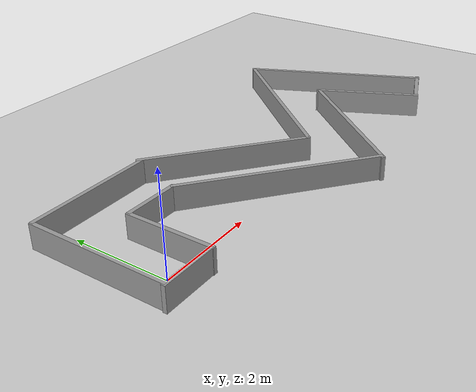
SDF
<sdf version="1.7">
 <world name="default">
  <plugin name="gazebo_ros_state" filename="libgazebo_ros_state.so"/>
  <light name="sun" type="directional">
   <pose>0 0 10 0 -0 0</pose>
   <diffuse>0.8 0.8 0.8 1</diffuse>
   <specular>0.2 0.2 0.2 1</specular>
   <attenuation>
    <range>1000</range>
    <constant>0.9</constant>
    <linear>0.01</linear>
    <quadratic>0.001</quadratic>
   </attenuation>
   <direction>-0.5 0.1 -0.9</direction>
   <spot><inner_angle>0</inner_angle><outer_angle>0</outer_angle><falloff>0</falloff></spot>
  </light>
  <model name="ground_plane">
   <static>1</static>
   <link name="link">
    <collision name="collision">
     <geometry><plane><normal>0 0 1</normal><size>100 100</size></plane></geometry>
     <surface>
      <contact><collide_bitmask>65535</collide_bitmask></contact>
      <friction><ode><mu>100</mu><mu2>50</mu2></ode></friction>
     </surface>
    </collision>
    <visual name="visual">
     <cast_shadows>0</cast_shadows>
     <geometry><plane><normal>0 0 1</normal><size>100 100</size></plane></geometry>
     <material>
      <script><uri>file://media/materials/scripts/gazebo.material</uri><name>Gazebo/Grey</name></script>
     </material>
    </visual>
   </link>
  </model>
  <gravity>0 0 -9.8</gravity>
  <magnetic_field>6e-06 2.3e-05 -4.2e-05</magnetic_field>
  <atmosphere type="adiabatic"/>
  <physics type="ode">
   <max_step_size>0.001</max_step_size>
   <real_time_factor>1</real_time_factor>
   <real_time_update_rate>1000</real_time_update_rate>
  </physics>
  <scene><ambient>0.4 0.4 0.4 1</ambient><background>0.7 0.7 0.7 1</background><shadows>1</shadows></scene>
  <audio><device>default</device></audio>
  <spherical_coordinates>
   <surface_model>EARTH_WGS84</surface_model>
   <latitude_deg>0</latitude_deg>
   <longitude_deg>0</longitude_deg>
   <elevation>0</elevation>
   <heading_deg>0</heading_deg>
  </spherical_coordinates>
  <model name="unit_box_ofir">
   <link name="link_0">
    <inertial>
     <mass>0.244143</mass>
     <inertia>
      <ixx>0.192689</ixx>
      <ixy>0</ixy>
      <ixz>0</ixz>
      <iyy>0.0204891</iyy>
      <iyz>0</iyz>
      <izz>0.172487</izz>
     </inertia>
    </inertial>
    <pose>0.498204 3.08925 0 0 -0 0</pose>
    <visual name="visual">
     <geometry><box><size>0.084097 2.91049 1</size></box></geometry>
     <material>
      <lighting>1</lighting>
      <script><uri>file://media/materials/scripts/gazebo.material</uri><name>Gazebo/Grey</name></script>
      <shader type="pixel"><normal_map>__default__</normal_map></shader>
     </material>
    </visual>
    <collision name="collision">
     <geometry><box><size>0.084097 2.91049 1</size></box></geometry>
     <surface>
      <friction>
       <ode><mu>1</mu><mu2>1</mu2><fdir1>0 0 0</fdir1><slip1>0</slip1><slip2>0</slip2></ode>
       <torsional>
        <coefficient>1</coefficient>
        <patch_radius>0</patch_radius>
        <surface_radius>0</surface_radius>
        <use_patch_radius>1</use_patch_radius>
        <ode><slip>0</slip></ode>
       </torsional>
      </friction>
      <bounce><restitution_coefficient>0</restitution_coefficient><threshold>1e+06</threshold></bounce>
      <contact>
       <collide_without_contact>0</collide_without_contact>
       <collide_without_contact_bitmask>1</collide_without_contact_bitmask>
       <collide_bitmask>1</collide_bitmask>
       <ode>
        <soft_cfm>0</soft_cfm>
        <soft_erp>0.2</soft_erp>
        <kp>1e+13</kp>
        <kd>1</kd>
        <max_vel>0.01</max_vel>
        <min_depth>0</min_depth>
       </ode>
       <bullet>
        <split_impulse>1</split_impulse>
        <split_impulse_penetration_threshold>-0.01</split_impulse_penetration_threshold>
        <soft_cfm>0</soft_cfm>
        <soft_erp>0.2</soft_erp>
        <kp>1e+13</kp>
        <kd>1</kd>
       </bullet>
      </contact>
     </surface>
    </collision>
   </link>
   <link name="link_0_clone">
    <inertial>
     <mass>0.154821</mass>
     <inertia>
      <ixx>0.0567073</ixx>
      <ixy>0</ixy>
      <ixz>0</ixz>
      <iyy>0.012993</iyy>
      <iyz>0</iyz>
      <izz>0.0438969</izz>
     </inertia>
    </inertial>
    <pose>1.58165 2.51249 0 0 -0 0</pose>
    <visual name="visual">
     <geometry><box><size>0.084097 1.84264 1</size></box></geometry>
     <material>
      <lighting>1</lighting>
      <script><uri>file://media/materials/scripts/gazebo.material</uri><name>Gazebo/Grey</name></script>
      <shader type="pixel"><normal_map>__default__</normal_map></shader>
     </material>
    </visual>
    <collision name="collision">
     <geometry><box><size>0.084097 1.84264 1</size></box></geometry>
     <surface>
      <friction>
       <ode><mu>1</mu><mu2>1</mu2><fdir1>0 0 0</fdir1><slip1>0</slip1><slip2>0</slip2></ode>
       <torsional>
        <coefficient>1</coefficient>
        <patch_radius>0</patch_radius>
        <surface_radius>0</surface_radius>
        <use_patch_radius>1</use_patch_radius>
        <ode><slip>0</slip></ode>
       </torsional>
      </friction>
      <bounce><restitution_coefficient>0</restitution_coefficient><threshold>1e+06</threshold></bounce>
      <contact>
       <collide_without_contact>0</collide_without_contact>
       <collide_without_contact_bitmask>1</collide_without_contact_bitmask>
       <collide_bitmask>1</collide_bitmask>
       <ode>
        <soft_cfm>0</soft_cfm>
        <soft_erp>0.2</soft_erp>
        <kp>1e+13</kp>
        <kd>1</kd>
        <max_vel>0.01</max_vel>
        <min_depth>0</min_depth>
       </ode>
       <bullet>
        <split_impulse>1</split_impulse>
        <split_impulse_penetration_threshold>-0.01</split_impulse_penetration_threshold>
        <soft_cfm>0</soft_cfm>
        <soft_erp>0.2</soft_erp>
        <kp>1e+13</kp>
        <kd>1</kd>
       </bullet>
      </contact>
     </surface>
    </collision>
   </link>
   <link name="link_0_clone_0">
    <inertial>
     <mass>0.223284</mass>
     <inertia>
      <ixx>0.150015</ixx>
      <ixy>0</ixy>
      <ixz>0</ixz>
      <iyy>0.0187386</iyy>
      <iyz>0</iyz>
      <izz>0.13154</izz>
     </inertia>
    </inertial>
    <pose>1.81037 4.51374 0 0 0 -1.56992</pose>
    <visual name="visual">
     <geometry><box><size>0.084097 2.6575 1</size></box></geometry>
     <material>
      <lighting>1</lighting>
      <script><uri>file://media/materials/scripts/gazebo.material</uri><name>Gazebo/Grey</name></script>
      <shader type="pixel"><normal_map>__default__</normal_map></shader>
     </material>
    </visual>
    <collision name="collision">
     <geometry><box><size>0.084097 2.6575 1</size></box></geometry>
     <surface>
      <friction>
       <ode><mu>1</mu><mu2>1</mu2><fdir1>0 0 0</fdir1><slip1>0</slip1><slip2>0</slip2></ode>
       <torsional>
        <coefficient>1</coefficient>
        <patch_radius>0</patch_radius>
        <surface_radius>0</surface_radius>
        <use_patch_radius>1</use_patch_radius>
        <ode><slip>0</slip></ode>
       </torsional>
      </friction>
      <bounce><restitution_coefficient>0</restitution_coefficient><threshold>1e+06</threshold></bounce>
      <contact>
       <collide_without_contact>0</collide_without_contact>
       <collide_without_contact_bitmask>1</collide_without_contact_bitmask>
       <collide_bitmask>1</collide_bitmask>
       <ode>
        <soft_cfm>0</soft_cfm>
        <soft_erp>0.2</soft_erp>
        <kp>1e+13</kp>
        <kd>1</kd>
        <max_vel>0.01</max_vel>
        <min_depth>0</min_depth>
       </ode>
       <bullet>
        <split_impulse>1</split_impulse>
        <split_impulse_penetration_threshold>-0.01</split_impulse_penetration_threshold>
        <soft_cfm>0</soft_cfm>
        <soft_erp>0.2</soft_erp>
        <kp>1e+13</kp>
        <kd>1</kd>
       </bullet>
      </contact>
     </surface>
    </collision>
   </link>
   <link name="link_0_clone_0_clone">
    <inertial>
     <mass>0.347889</mass>
     <inertia>
      <ixx>0.526005</ixx>
      <ixy>0</ixy>
      <ixz>0</ixz>
      <iyy>0.0291958</iyy>
      <iyz>0</iyz>
      <izz>0.49722</izz>
     </inertia>
    </inertial>
    <pose>4.23789 2.06687 0 0 0 -2.27061</pose>
    <visual name="visual">
     <geometry><box><size>0.084097 4.14052 1</size></box></geometry>
     <material>
      <lighting>1</lighting>
      <script><uri>file://media/materials/scripts/gazebo.material</uri><name>Gazebo/Grey</name></script>
      <shader type="pixel"><normal_map>__default__</normal_map></shader>
     </material>
    </visual>
    <collision name="collision">
     <geometry><box><size>0.084097 4.14052 1</size></box></geometry>
     <surface>
      <friction>
       <ode><mu>1</mu><mu2>1</mu2><fdir1>0 0 0</fdir1><slip1>0</slip1><slip2>0</slip2></ode>
       <torsional>
        <coefficient>1</coefficient>
        <patch_radius>0</patch_radius>
        <surface_radius>0</surface_radius>
        <use_patch_radius>1</use_patch_radius>
        <ode><slip>0</slip></ode>
       </torsional>
      </friction>
      <bounce><restitution_coefficient>0</restitution_coefficient><threshold>1e+06</threshold></bounce>
      <contact>
       <collide_without_contact>0</collide_without_contact>
       <collide_without_contact_bitmask>1</collide_without_contact_bitmask>
       <collide_bitmask>1</collide_bitmask>
       <ode>
        <soft_cfm>0</soft_cfm>
        <soft_erp>0.2</soft_erp>
        <kp>1e+13</kp>
        <kd>1</kd>
        <max_vel>0.01</max_vel>
        <min_depth>0</min_depth>
       </ode>
       <bullet>
        <split_impulse>1</split_impulse>
        <split_impulse_penetration_threshold>-0.01</split_impulse_penetration_threshold>
        <soft_cfm>0</soft_cfm>
        <soft_erp>0.2</soft_erp>
        <kp>1e+13</kp>
        <kd>1</kd>
       </bullet>
      </contact>
     </surface>
    </collision>
   </link>
   <link name="link_0_clone_0_clone_0">
    <inertial>
     <mass>0.096568</mass>
     <inertia>
      <ixx>0.0186777</ixx>
      <ixy>0</ixy>
      <ixz>0</ixz>
      <iyy>0.00810425</iyy>
      <iyz>0</iyz>
      <izz>0.0106873</izz>
     </inertia>
    </inertial>
    <pose>1.00652 1.64464 0 0 0 -1.56992</pose>
    <visual name="visual">
     <geometry><box><size>0.084097 1.14934 1</size></box></geometry>
     <material>
      <lighting>1</lighting>
      <script><uri>file://media/materials/scripts/gazebo.material</uri><name>Gazebo/Grey</name></script>
      <shader type="pixel"><normal_map>__default__</normal_map></shader>
     </material>
    </visual>
    <collision name="collision">
     <geometry><box><size>0.084097 1.14934 1</size></box></geometry>
     <surface>
      <friction>
       <ode><mu>1</mu><mu2>1</mu2><fdir1>0 0 0</fdir1><slip1>0</slip1><slip2>0</slip2></ode>
       <torsional>
        <coefficient>1</coefficient>
        <patch_radius>0</patch_radius>
        <surface_radius>0</surface_radius>
        <use_patch_radius>1</use_patch_radius>
        <ode><slip>0</slip></ode>
       </torsional>
      </friction>
      <bounce><restitution_coefficient>0</restitution_coefficient><threshold>1e+06</threshold></bounce>
      <contact>
       <collide_without_contact>0</collide_without_contact>
       <collide_without_contact_bitmask>1</collide_without_contact_bitmask>
       <collide_bitmask>1</collide_bitmask>
       <ode>
        <soft_cfm>0</soft_cfm>
        <soft_erp>0.2</soft_erp>
        <kp>1e+13</kp>
        <kd>1</kd>
        <max_vel>0.01</max_vel>
        <min_depth>0</min_depth>
       </ode>
       <bullet>
        <split_impulse>1</split_impulse>
        <split_impulse_penetration_threshold>-0.01</split_impulse_penetration_threshold>
        <soft_cfm>0</soft_cfm>
        <soft_erp>0.2</soft_erp>
        <kp>1e+13</kp>
        <kd>1</kd>
       </bullet>
      </contact>
     </surface>
    </collision>
   </link>
   <link name="link_0_clone_0_clone_0_clone">
    <inertial>
     <mass>0.096568</mass>
     <inertia>
      <ixx>0.0186777</ixx>
      <ixy>0</ixy>
      <ixz>0</ixz>
      <iyy>0.00810425</iyy>
      <iyz>0</iyz>
      <izz>0.0106873</izz>
     </inertia>
    </inertial>
    <pose>9.55456 1.62571 0 0 0 -1.1954</pose>
    <visual name="visual">
     <geometry><box><size>0.084097 1.14934 1</size></box></geometry>
     <material>
      <lighting>1</lighting>
      <script><uri>file://media/materials/scripts/gazebo.material</uri><name>Gazebo/Grey</name></script>
      <shader type="pixel"><normal_map>__default__</normal_map></shader>
     </material>
    </visual>
    <collision name="collision">
     <geometry><box><size>0.084097 1.14934 1</size></box></geometry>
     <surface>
      <friction>
       <ode><mu>1</mu><mu2>1</mu2><fdir1>0 0 0</fdir1><slip1>0</slip1><slip2>0</slip2></ode>
       <torsional>
        <coefficient>1</coefficient>
        <patch_radius>0</patch_radius>
        <surface_radius>0</surface_radius>
        <use_patch_radius>1</use_patch_radius>
        <ode><slip>0</slip></ode>
       </torsional>
      </friction>
      <bounce><restitution_coefficient>0</restitution_coefficient><threshold>1e+06</threshold></bounce>
      <contact>
       <collide_without_contact>0</collide_without_contact>
       <collide_without_contact_bitmask>1</collide_without_contact_bitmask>
       <collide_bitmask>1</collide_bitmask>
       <ode>
        <soft_cfm>0</soft_cfm>
        <soft_erp>0.2</soft_erp>
        <kp>1e+13</kp>
        <kd>1</kd>
        <max_vel>0.01</max_vel>
        <min_depth>0</min_depth>
       </ode>
       <bullet>
        <split_impulse>1</split_impulse>
        <split_impulse_penetration_threshold>-0.01</split_impulse_penetration_threshold>
        <soft_cfm>0</soft_cfm>
        <soft_erp>0.2</soft_erp>
        <kp>1e+13</kp>
        <kd>1</kd>
       </bullet>
      </contact>
     </surface>
    </collision>
   </link>
   <link name="link_0_clone_0_clone_clone">
    <inertial>
     <mass>0.296044</mass>
     <inertia>
      <ixx>0.330951</ixx>
      <ixy>0</ixy>
      <ixz>0</ixz>
      <iyy>0.0248448</iyy>
      <iyz>0</iyz>
      <izz>0.306455</izz>
     </inertia>
    </inertial>
    <pose>4.39462 3.46222 0 0 0 -2.27061</pose>
    <visual name="visual">
     <geometry><box><size>0.084097 3.52348 1</size></box></geometry>
     <material>
      <lighting>1</lighting>
      <script><uri>file://media/materials/scripts/gazebo.material</uri><name>Gazebo/Grey</name></script>
      <shader type="pixel"><normal_map>__default__</normal_map></shader>
     </material>
    </visual>
    <collision name="collision">
     <geometry><box><size>0.084097 3.52348 1</size></box></geometry>
     <surface>
      <friction>
       <ode><mu>1</mu><mu2>1</mu2><fdir1>0 0 0</fdir1><slip1>0</slip1><slip2>0</slip2></ode>
       <torsional>
        <coefficient>1</coefficient>
        <patch_radius>0</patch_radius>
        <surface_radius>0</surface_radius>
        <use_patch_radius>1</use_patch_radius>
        <ode><slip>0</slip></ode>
       </torsional>
      </friction>
      <bounce><restitution_coefficient>0</restitution_coefficient><threshold>1e+06</threshold></bounce>
      <contact>
       <collide_without_contact>0</collide_without_contact>
       <collide_without_contact_bitmask>1</collide_without_contact_bitmask>
       <collide_bitmask>1</collide_bitmask>
       <ode>
        <soft_cfm>0</soft_cfm>
        <soft_erp>0.2</soft_erp>
        <kp>1e+13</kp>
        <kd>1</kd>
        <max_vel>0.01</max_vel>
        <min_depth>0</min_depth>
       </ode>
       <bullet>
        <split_impulse>1</split_impulse>
        <split_impulse_penetration_threshold>-0.01</split_impulse_penetration_threshold>
        <soft_cfm>0</soft_cfm>
        <soft_erp>0.2</soft_erp>
        <kp>1e+13</kp>
        <kd>1</kd>
       </bullet>
      </contact>
     </surface>
    </collision>
   </link>
   <link name="link_0_clone_0_clone_clone_0">
    <inertial>
     <mass>0.301729</mass>
     <inertia>
      <ixx>0.349407</ixx>
      <ixy>0</ixy>
      <ixz>0</ixz>
      <iyy>0.0253219</iyy>
      <iyz>0</iyz>
      <izz>0.32444</izz>
     </inertia>
    </inertial>
    <pose>6.89309 2.06784 0 0 -0 2.44369</pose>
    <visual name="visual">
     <geometry><box><size>0.084097 3.59112 1</size></box></geometry>
     <material>
      <lighting>1</lighting>
      <script><uri>file://media/materials/scripts/gazebo.material</uri><name>Gazebo/Grey</name></script>
      <shader type="pixel"><normal_map>__default__</normal_map></shader>
     </material>
    </visual>
    <collision name="collision">
     <geometry><box><size>0.084097 3.59112 1</size></box></geometry>
     <surface>
      <friction>
       <ode><mu>1</mu><mu2>1</mu2><fdir1>0 0 0</fdir1><slip1>0</slip1><slip2>0</slip2></ode>
       <torsional>
        <coefficient>1</coefficient>
        <patch_radius>0</patch_radius>
        <surface_radius>0</surface_radius>
        <use_patch_radius>1</use_patch_radius>
        <ode><slip>0</slip></ode>
       </torsional>
      </friction>
      <bounce><restitution_coefficient>0</restitution_coefficient><threshold>1e+06</threshold></bounce>
      <contact>
       <collide_without_contact>0</collide_without_contact>
       <collide_without_contact_bitmask>1</collide_without_contact_bitmask>
       <collide_bitmask>1</collide_bitmask>
       <ode>
        <soft_cfm>0</soft_cfm>
        <soft_erp>0.2</soft_erp>
        <kp>1e+13</kp>
        <kd>1</kd>
        <max_vel>0.01</max_vel>
        <min_depth>0</min_depth>
       </ode>
       <bullet>
        <split_impulse>1</split_impulse>
        <split_impulse_penetration_threshold>-0.01</split_impulse_penetration_threshold>
        <soft_cfm>0</soft_cfm>
        <soft_erp>0.2</soft_erp>
        <kp>1e+13</kp>
        <kd>1</kd>
       </bullet>
      </contact>
     </surface>
    </collision>
   </link>
   <link name="link_0_clone_0_clone_clone_0_clone">
    <inertial>
     <mass>0.347889</mass>
     <inertia>
      <ixx>0.526005</ixx>
      <ixy>0</ixy>
      <ixz>0</ixz>
      <iyy>0.0291958</iyy>
      <iyz>0</iyz>
      <izz>0.49722</izz>
     </inertia>
    </inertial>
    <pose>7.0253 3.91985 0 0 -0 2.44369</pose>
    <visual name="visual">
     <geometry><box><size>0.084097 4.14052 1</size></box></geometry>
     <material>
      <lighting>1</lighting>
      <script><uri>file://media/materials/scripts/gazebo.material</uri><name>Gazebo/Grey</name></script>
      <shader type="pixel"><normal_map>__default__</normal_map></shader>
     </material>
    </visual>
    <collision name="collision">
     <geometry><box><size>0.084097 4.14052 1</size></box></geometry>
     <surface>
      <friction>
       <ode><mu>1</mu><mu2>1</mu2><fdir1>0 0 0</fdir1><slip1>0</slip1><slip2>0</slip2></ode>
       <torsional>
        <coefficient>1</coefficient>
        <patch_radius>0</patch_radius>
        <surface_radius>0</surface_radius>
        <use_patch_radius>1</use_patch_radius>
        <ode><slip>0</slip></ode>
       </torsional>
      </friction>
      <bounce><restitution_coefficient>0</restitution_coefficient><threshold>1e+06</threshold></bounce>
      <contact>
       <collide_without_contact>0</collide_without_contact>
       <collide_without_contact_bitmask>1</collide_without_contact_bitmask>
       <collide_bitmask>1</collide_bitmask>
       <ode>
        <soft_cfm>0</soft_cfm>
        <soft_erp>0.2</soft_erp>
        <kp>1e+13</kp>
        <kd>1</kd>
        <max_vel>0.01</max_vel>
        <min_depth>0</min_depth>
       </ode>
       <bullet>
        <split_impulse>1</split_impulse>
        <split_impulse_penetration_threshold>-0.01</split_impulse_penetration_threshold>
        <soft_cfm>0</soft_cfm>
        <soft_erp>0.2</soft_erp>
        <kp>1e+13</kp>
        <kd>1</kd>
       </bullet>
      </contact>
     </surface>
    </collision>
   </link>
   <link name="link_0_clone_0_clone_clone_0_clone_clone">
    <inertial>
     <mass>0.347889</mass>
     <inertia>
      <ixx>0.526005</ixx>
      <ixy>0</ixy>
      <ixz>0</ixz>
      <iyy>0.0291958</iyy>
      <iyz>0</iyz>
      <izz>0.49722</izz>
     </inertia>
    </inertial>
    <pose>9.18836 3.6489 0 0 0 -2.71728</pose>
    <visual name="visual">
     <geometry><box><size>0.084097 4.14052 1</size></box></geometry>
     <material>
      <lighting>1</lighting>
      <script><uri>file://media/materials/scripts/gazebo.material</uri><name>Gazebo/Grey</name></script>
      <shader type="pixel"><normal_map>__default__</normal_map></shader>
     </material>
    </visual>
    <collision name="collision">
     <geometry><box><size>0.084097 4.14052 1</size></box></geometry>
     <surface>
      <friction>
       <ode><mu>1</mu><mu2>1</mu2><fdir1>0 0 0</fdir1><slip1>0</slip1><slip2>0</slip2></ode>
       <torsional>
        <coefficient>1</coefficient>
        <patch_radius>0</patch_radius>
        <surface_radius>0</surface_radius>
        <use_patch_radius>1</use_patch_radius>
        <ode><slip>0</slip></ode>
       </torsional>
      </friction>
      <bounce><restitution_coefficient>0</restitution_coefficient><threshold>1e+06</threshold></bounce>
      <contact>
       <collide_without_contact>0</collide_without_contact>
       <collide_without_contact_bitmask>1</collide_without_contact_bitmask>
       <collide_bitmask>1</collide_bitmask>
       <ode>
        <soft_cfm>0</soft_cfm>
        <soft_erp>0.2</soft_erp>
        <kp>1e+13</kp>
        <kd>1</kd>
        <max_vel>0.01</max_vel>
        <min_depth>0</min_depth>
       </ode>
       <bullet>
        <split_impulse>1</split_impulse>
        <split_impulse_penetration_threshold>-0.01</split_impulse_penetration_threshold>
        <soft_cfm>0</soft_cfm>
        <soft_erp>0.2</soft_erp>
        <kp>1e+13</kp>
        <kd>1</kd>
       </bullet>
      </contact>
     </surface>
    </collision>
   </link>
   <link name="link_0_clone_0_clone_clone_0_clone_clone_clone">
    <inertial>
     <mass>0.197763</mass>
     <inertia>
      <ixx>0.107784</ixx>
      <ixy>0</ixy>
      <ixz>0</ixz>
      <iyy>0.0165968</iyy>
      <iyz>0</iyz>
      <izz>0.0914201</izz>
     </inertia>
    </inertial>
    <pose>8.50858 2.41669 2.6e-05 1.7e-05 0.001087 -2.70118</pose>
    <visual name="visual">
     <geometry><box><size>0.084097 2.35376 1</size></box></geometry>
     <material>
      <lighting>1</lighting>
      <script><uri>file://media/materials/scripts/gazebo.material</uri><name>Gazebo/Grey</name></script>
      <shader type="pixel"><normal_map>__default__</normal_map></shader>
     </material>
    </visual>
    <collision name="collision">
     <geometry><box><size>0.084097 2.35376 1</size></box></geometry>
     <surface>
      <friction>
       <ode><mu>1</mu><mu2>1</mu2><fdir1>0 0 0</fdir1><slip1>0</slip1><slip2>0</slip2></ode>
       <torsional>
        <coefficient>1</coefficient>
        <patch_radius>0</patch_radius>
        <surface_radius>0</surface_radius>
        <use_patch_radius>1</use_patch_radius>
        <ode><slip>0</slip></ode>
       </torsional>
      </friction>
      <bounce><restitution_coefficient>0</restitution_coefficient><threshold>1e+06</threshold></bounce>
      <contact>
       <collide_without_contact>0</collide_without_contact>
       <collide_without_contact_bitmask>1</collide_without_contact_bitmask>
       <collide_bitmask>1</collide_bitmask>
       <ode>
        <soft_cfm>0</soft_cfm>
        <soft_erp>0.2</soft_erp>
        <kp>1e+13</kp>
        <kd>1</kd>
        <max_vel>0.01</max_vel>
        <min_depth>0</min_depth>
       </ode>
       <bullet>
        <split_impulse>1</split_impulse>
        <split_impulse_penetration_threshold>-0.01</split_impulse_penetration_threshold>
        <soft_cfm>0</soft_cfm>
        <soft_erp>0.2</soft_erp>
        <kp>1e+13</kp>
        <kd>1</kd>
       </bullet>
      </contact>
     </surface>
    </collision>
   </link>
   <link name="link_0_clone_1">
    <inertial>
     <mass>0.0967648</mass>
     <inertia>
      <ixx>0.0187592</ixx>
      <ixy>0</ixy>
      <ixz>0</ixz>
      <iyy>0.00812076</iyy>
      <iyz>0</iyz>
      <izz>0.0107524</izz>
     </inertia>
    </inertial>
    <pose>2.1454 3.38982 0 0 0 -1.58339</pose>
    <visual name="visual">
     <geometry><box><size>0.084097 1.15168 1</size></box></geometry>
     <material>
      <lighting>1</lighting>
      <script><uri>file://media/materials/scripts/gazebo.material</uri><name>Gazebo/Grey</name></script>
      <shader type="pixel"><normal_map>__default__</normal_map></shader>
     </material>
    </visual>
    <collision name="collision">
     <geometry><box><size>0.084097 1.15168 1</size></box></geometry>
     <surface>
      <friction>
       <ode><mu>1</mu><mu2>1</mu2><fdir1>0 0 0</fdir1><slip1>0</slip1><slip2>0</slip2></ode>
       <torsional>
        <coefficient>1</coefficient>
        <patch_radius>0</patch_radius>
        <surface_radius>0</surface_radius>
        <use_patch_radius>1</use_patch_radius>
        <ode><slip>0</slip></ode>
       </torsional>
      </friction>
      <bounce><restitution_coefficient>0</restitution_coefficient><threshold>1e+06</threshold></bounce>
      <contact>
       <collide_without_contact>0</collide_without_contact>
       <collide_without_contact_bitmask>1</collide_without_contact_bitmask>
       <collide_bitmask>1</collide_bitmask>
       <ode>
        <soft_cfm>0</soft_cfm>
        <soft_erp>0.2</soft_erp>
        <kp>1e+13</kp>
        <kd>1</kd>
        <max_vel>0.01</max_vel>
        <min_depth>0</min_depth>
       </ode>
       <bullet>
        <split_impulse>1</split_impulse>
        <split_impulse_penetration_threshold>-0.01</split_impulse_penetration_threshold>
        <soft_cfm>0</soft_cfm>
        <soft_erp>0.2</soft_erp>
        <kp>1e+13</kp>
        <kd>1</kd>
       </bullet>
      </contact>
     </surface>
    </collision>
   </link>
   <static>1</static>
   <pose>-1.02551 -2.11422 0 0 -0 0</pose>
  </model>
 </world>
</sdf>
